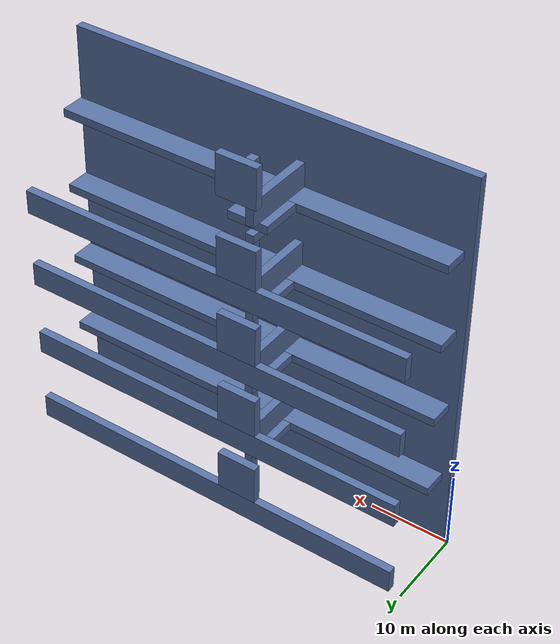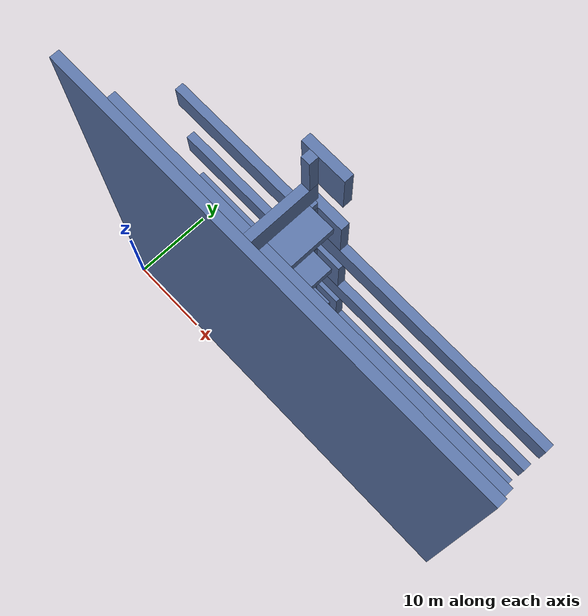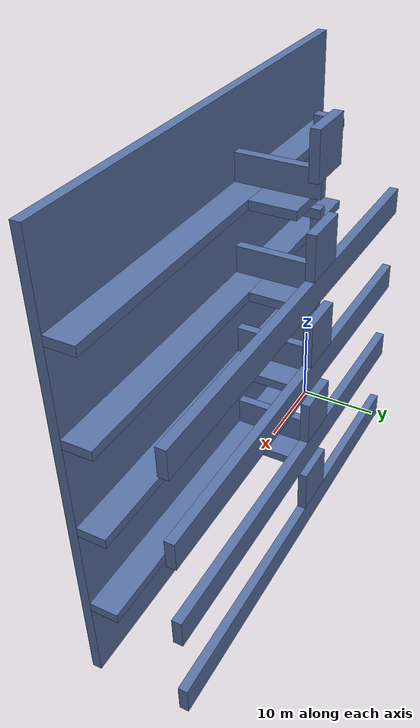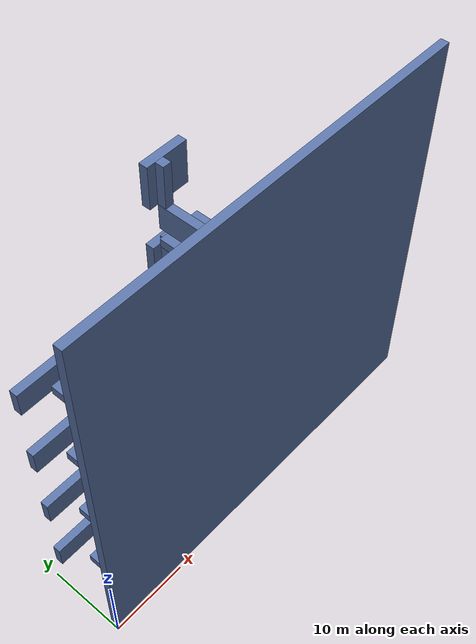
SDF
<sdf version="1.7">
 <world name="default">
  <model name="racer_env">
   <static>1</static>
   <link name="b1">
    <pose>25.000 0.500 25.500 0 0 0</pose>
    <collision name="c"><geometry><box><size>50.000 1.000 49.000</size></box></geometry></collision>
    <visual name="v">
     <geometry><box><size>50.000 1.000 49.000</size></box></geometry>
     <material><ambient>0.30 0.38 0.55 1</ambient><diffuse>0.35 0.45 0.65 1</diffuse></material>
    </visual>
   </link>
   <link name="b3">
    <pose>25.500 2.500 10.500 0 0 0</pose>
    <collision name="c"><geometry><box><size>49.000 3.000 1.000</size></box></geometry></collision>
    <visual name="v">
     <geometry><box><size>49.000 3.000 1.000</size></box></geometry>
     <material><ambient>0.30 0.38 0.55 1</ambient><diffuse>0.35 0.45 0.65 1</diffuse></material>
    </visual>
   </link>
   <link name="b4">
    <pose>25.500 2.500 20.500 0 0 0</pose>
    <collision name="c"><geometry><box><size>49.000 3.000 1.000</size></box></geometry></collision>
    <visual name="v">
     <geometry><box><size>49.000 3.000 1.000</size></box></geometry>
     <material><ambient>0.30 0.38 0.55 1</ambient><diffuse>0.35 0.45 0.65 1</diffuse></material>
    </visual>
   </link>
   <link name="b5">
    <pose>25.500 2.500 30.500 0 0 0</pose>
    <collision name="c"><geometry><box><size>49.000 3.000 1.000</size></box></geometry></collision>
    <visual name="v">
     <geometry><box><size>49.000 3.000 1.000</size></box></geometry>
     <material><ambient>0.30 0.38 0.55 1</ambient><diffuse>0.35 0.45 0.65 1</diffuse></material>
    </visual>
   </link>
   <link name="b6">
    <pose>25.500 2.500 40.500 0 0 0</pose>
    <collision name="c"><geometry><box><size>49.000 3.000 1.000</size></box></geometry></collision>
    <visual name="v">
     <geometry><box><size>49.000 3.000 1.000</size></box></geometry>
     <material><ambient>0.30 0.38 0.55 1</ambient><diffuse>0.35 0.45 0.65 1</diffuse></material>
    </visual>
   </link>
   <link name="b12">
    <pose>25.500 10.500 2.500 0 0 0</pose>
    <collision name="c"><geometry><box><size>49.000 1.000 3.000</size></box></geometry></collision>
    <visual name="v">
     <geometry><box><size>49.000 1.000 3.000</size></box></geometry>
     <material><ambient>0.30 0.38 0.55 1</ambient><diffuse>0.35 0.45 0.65 1</diffuse></material>
    </visual>
   </link>
   <link name="b14">
    <pose>25.500 10.500 12.500 0 0 0</pose>
    <collision name="c"><geometry><box><size>49.000 1.000 3.000</size></box></geometry></collision>
    <visual name="v">
     <geometry><box><size>49.000 1.000 3.000</size></box></geometry>
     <material><ambient>0.30 0.38 0.55 1</ambient><diffuse>0.35 0.45 0.65 1</diffuse></material>
    </visual>
   </link>
   <link name="b16">
    <pose>25.500 10.500 22.500 0 0 0</pose>
    <collision name="c"><geometry><box><size>49.000 1.000 3.000</size></box></geometry></collision>
    <visual name="v">
     <geometry><box><size>49.000 1.000 3.000</size></box></geometry>
     <material><ambient>0.30 0.38 0.55 1</ambient><diffuse>0.35 0.45 0.65 1</diffuse></material>
    </visual>
   </link>
   <link name="b18">
    <pose>25.500 10.500 32.500 0 0 0</pose>
    <collision name="c"><geometry><box><size>49.000 1.000 3.000</size></box></geometry></collision>
    <visual name="v">
     <geometry><box><size>49.000 1.000 3.000</size></box></geometry>
     <material><ambient>0.30 0.38 0.55 1</ambient><diffuse>0.35 0.45 0.65 1</diffuse></material>
    </visual>
   </link>
   <link name="b247">
    <pose>21.500 6.500 10.500 0 0 0</pose>
    <collision name="c"><geometry><box><size>5.000 5.000 1.000</size></box></geometry></collision>
    <visual name="v">
     <geometry><box><size>5.000 5.000 1.000</size></box></geometry>
     <material><ambient>0.30 0.38 0.55 1</ambient><diffuse>0.35 0.45 0.65 1</diffuse></material>
    </visual>
   </link>
   <link name="b248">
    <pose>21.500 6.500 20.500 0 0 0</pose>
    <collision name="c"><geometry><box><size>5.000 5.000 1.000</size></box></geometry></collision>
    <visual name="v">
     <geometry><box><size>5.000 5.000 1.000</size></box></geometry>
     <material><ambient>0.30 0.38 0.55 1</ambient><diffuse>0.35 0.45 0.65 1</diffuse></material>
    </visual>
   </link>
   <link name="b249">
    <pose>21.500 6.500 30.500 0 0 0</pose>
    <collision name="c"><geometry><box><size>5.000 5.000 1.000</size></box></geometry></collision>
    <visual name="v">
     <geometry><box><size>5.000 5.000 1.000</size></box></geometry>
     <material><ambient>0.30 0.38 0.55 1</ambient><diffuse>0.35 0.45 0.65 1</diffuse></material>
    </visual>
   </link>
   <link name="b250">
    <pose>21.500 6.500 40.500 0 0 0</pose>
    <collision name="c"><geometry><box><size>5.000 5.000 1.000</size></box></geometry></collision>
    <visual name="v">
     <geometry><box><size>5.000 5.000 1.000</size></box></geometry>
     <material><ambient>0.30 0.38 0.55 1</ambient><diffuse>0.35 0.45 0.65 1</diffuse></material>
    </visual>
   </link>
   <link name="b251">
    <pose>21.500 10.500 6.500 0 0 0</pose>
    <collision name="c"><geometry><box><size>5.000 1.000 5.000</size></box></geometry></collision>
    <visual name="v">
     <geometry><box><size>5.000 1.000 5.000</size></box></geometry>
     <material><ambient>0.30 0.38 0.55 1</ambient><diffuse>0.35 0.45 0.65 1</diffuse></material>
    </visual>
   </link>
   <link name="b252">
    <pose>21.500 10.500 16.500 0 0 0</pose>
    <collision name="c"><geometry><box><size>5.000 1.000 5.000</size></box></geometry></collision>
    <visual name="v">
     <geometry><box><size>5.000 1.000 5.000</size></box></geometry>
     <material><ambient>0.30 0.38 0.55 1</ambient><diffuse>0.35 0.45 0.65 1</diffuse></material>
    </visual>
   </link>
   <link name="b253">
    <pose>21.500 10.500 26.500 0 0 0</pose>
    <collision name="c"><geometry><box><size>5.000 1.000 5.000</size></box></geometry></collision>
    <visual name="v">
     <geometry><box><size>5.000 1.000 5.000</size></box></geometry>
     <material><ambient>0.30 0.38 0.55 1</ambient><diffuse>0.35 0.45 0.65 1</diffuse></material>
    </visual>
   </link>
   <link name="b254">
    <pose>21.500 10.500 36.500 0 0 0</pose>
    <collision name="c"><geometry><box><size>5.000 1.000 5.000</size></box></geometry></collision>
    <visual name="v">
     <geometry><box><size>5.000 1.000 5.000</size></box></geometry>
     <material><ambient>0.30 0.38 0.55 1</ambient><diffuse>0.35 0.45 0.65 1</diffuse></material>
    </visual>
   </link>
   <link name="b255">
    <pose>21.500 10.500 46.500 0 0 0</pose>
    <collision name="c"><geometry><box><size>5.000 1.000 5.000</size></box></geometry></collision>
    <visual name="v">
     <geometry><box><size>5.000 1.000 5.000</size></box></geometry>
     <material><ambient>0.30 0.38 0.55 1</ambient><diffuse>0.35 0.45 0.65 1</diffuse></material>
    </visual>
   </link>
   <link name="b289">
    <pose>20.500 5.500 12.500 0 0 0</pose>
    <collision name="c"><geometry><box><size>1.000 9.000 3.000</size></box></geometry></collision>
    <visual name="v">
     <geometry><box><size>1.000 9.000 3.000</size></box></geometry>
     <material><ambient>0.30 0.38 0.55 1</ambient><diffuse>0.35 0.45 0.65 1</diffuse></material>
    </visual>
   </link>
   <link name="b291">
    <pose>20.500 5.500 22.500 0 0 0</pose>
    <collision name="c"><geometry><box><size>1.000 9.000 3.000</size></box></geometry></collision>
    <visual name="v">
     <geometry><box><size>1.000 9.000 3.000</size></box></geometry>
     <material><ambient>0.30 0.38 0.55 1</ambient><diffuse>0.35 0.45 0.65 1</diffuse></material>
    </visual>
   </link>
   <link name="b293">
    <pose>20.500 5.500 32.500 0 0 0</pose>
    <collision name="c"><geometry><box><size>1.000 9.000 3.000</size></box></geometry></collision>
    <visual name="v">
     <geometry><box><size>1.000 9.000 3.000</size></box></geometry>
     <material><ambient>0.30 0.38 0.55 1</ambient><diffuse>0.35 0.45 0.65 1</diffuse></material>
    </visual>
   </link>
   <link name="b295">
    <pose>20.500 5.500 42.500 0 0 0</pose>
    <collision name="c"><geometry><box><size>1.000 9.000 3.000</size></box></geometry></collision>
    <visual name="v">
     <geometry><box><size>1.000 9.000 3.000</size></box></geometry>
     <material><ambient>0.30 0.38 0.55 1</ambient><diffuse>0.35 0.45 0.65 1</diffuse></material>
    </visual>
   </link>
   <link name="b297">
    <pose>20.500 7.000 9.500 0 0 0</pose>
    <collision name="c"><geometry><box><size>1.000 6.000 1.000</size></box></geometry></collision>
    <visual name="v">
     <geometry><box><size>1.000 6.000 1.000</size></box></geometry>
     <material><ambient>0.30 0.38 0.55 1</ambient><diffuse>0.35 0.45 0.65 1</diffuse></material>
    </visual>
   </link>
   <link name="b298">
    <pose>20.500 7.000 19.500 0 0 0</pose>
    <collision name="c"><geometry><box><size>1.000 6.000 1.000</size></box></geometry></collision>
    <visual name="v">
     <geometry><box><size>1.000 6.000 1.000</size></box></geometry>
     <material><ambient>0.30 0.38 0.55 1</ambient><diffuse>0.35 0.45 0.65 1</diffuse></material>
    </visual>
   </link>
   <link name="b299">
    <pose>20.500 7.000 29.500 0 0 0</pose>
    <collision name="c"><geometry><box><size>1.000 6.000 1.000</size></box></geometry></collision>
    <visual name="v">
     <geometry><box><size>1.000 6.000 1.000</size></box></geometry>
     <material><ambient>0.30 0.38 0.55 1</ambient><diffuse>0.35 0.45 0.65 1</diffuse></material>
    </visual>
   </link>
   <link name="b300">
    <pose>20.500 7.000 39.500 0 0 0</pose>
    <collision name="c"><geometry><box><size>1.000 6.000 1.000</size></box></geometry></collision>
    <visual name="v">
     <geometry><box><size>1.000 6.000 1.000</size></box></geometry>
     <material><ambient>0.30 0.38 0.55 1</ambient><diffuse>0.35 0.45 0.65 1</diffuse></material>
    </visual>
   </link>
   <link name="b301">
    <pose>20.500 9.500 6.500 0 0 0</pose>
    <collision name="c"><geometry><box><size>1.000 1.000 5.000</size></box></geometry></collision>
    <visual name="v">
     <geometry><box><size>1.000 1.000 5.000</size></box></geometry>
     <material><ambient>0.30 0.38 0.55 1</ambient><diffuse>0.35 0.45 0.65 1</diffuse></material>
    </visual>
   </link>
   <link name="b302">
    <pose>20.500 9.500 16.500 0 0 0</pose>
    <collision name="c"><geometry><box><size>1.000 1.000 5.000</size></box></geometry></collision>
    <visual name="v">
     <geometry><box><size>1.000 1.000 5.000</size></box></geometry>
     <material><ambient>0.30 0.38 0.55 1</ambient><diffuse>0.35 0.45 0.65 1</diffuse></material>
    </visual>
   </link>
   <link name="b303">
    <pose>20.500 9.500 26.500 0 0 0</pose>
    <collision name="c"><geometry><box><size>1.000 1.000 5.000</size></box></geometry></collision>
    <visual name="v">
     <geometry><box><size>1.000 1.000 5.000</size></box></geometry>
     <material><ambient>0.30 0.38 0.55 1</ambient><diffuse>0.35 0.45 0.65 1</diffuse></material>
    </visual>
   </link>
   <link name="b304">
    <pose>20.500 9.500 36.500 0 0 0</pose>
    <collision name="c"><geometry><box><size>1.000 1.000 5.000</size></box></geometry></collision>
    <visual name="v">
     <geometry><box><size>1.000 1.000 5.000</size></box></geometry>
     <material><ambient>0.30 0.38 0.55 1</ambient><diffuse>0.35 0.45 0.65 1</diffuse></material>
    </visual>
   </link>
   <link name="b305">
    <pose>20.500 9.500 46.500 0 0 0</pose>
    <collision name="c"><geometry><box><size>1.000 1.000 5.000</size></box></geometry></collision>
    <visual name="v">
     <geometry><box><size>1.000 1.000 5.000</size></box></geometry>
     <material><ambient>0.30 0.38 0.55 1</ambient><diffuse>0.35 0.45 0.65 1</diffuse></material>
    </visual>
   </link>
  </model>
 </world>
</sdf>
